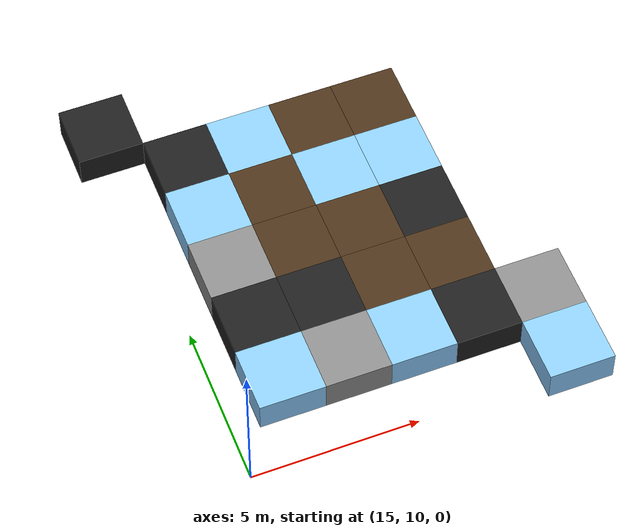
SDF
<sdf version="1.5">
 <world name="squares_example">
  <model name="tile_28_21">
   <static>true</static>
   <pose>25.000 11.000 -0.500 0 0 0</pose>
   <link name="link">
    <collision name="col">
     <geometry><box><size>2.0 2.0 1.0</size></box></geometry>
     <surface>
      <friction>
       <ode><mu>0.03</mu><mu2>0.02</mu2><fdir1>1 0 0</fdir1><slip1>0.03</slip1><slip2>0.03</slip2></ode>
       <torsional>
        <coefficient>0.005</coefficient>
        <use_patch_radius>false</use_patch_radius>
        <surface_radius>0.12</surface_radius>
        <ode><slip>0.01</slip></ode>
       </torsional>
      </friction>
      <bounce><restitution_coefficient>0.0</restitution_coefficient><threshold>0.1</threshold></bounce>
      <contact>
       <ode><kp>10000000.0</kp><kd>1000.0</kd><max_vel>0.01</max_vel><min_depth>0.0</min_depth></ode>
      </contact>
     </surface>
    </collision>
    <visual name="visual">
     <geometry><box><size>2.0 2.0 1.0</size></box></geometry>
     <material>
      <diffuse>0.55 0.80 1.00 1</diffuse>
      <ambient>0 0 0 0</ambient>
      <specular>0 0 0 1</specular>
      <emissive>0 0 0 1</emissive>
     </material>
    </visual>
   </link>
  </model>
  <model name="tile_24_22">
   <static>true</static>
   <pose>17.000 13.000 -0.500 0 0 0</pose>
   <link name="link">
    <collision name="col">
     <geometry><box><size>2.0 2.0 1.0</size></box></geometry>
     <surface>
      <friction>
       <ode><mu>0.03</mu><mu2>0.02</mu2><fdir1>1 0 0</fdir1><slip1>0.03</slip1><slip2>0.03</slip2></ode>
       <torsional>
        <coefficient>0.005</coefficient>
        <use_patch_radius>false</use_patch_radius>
        <surface_radius>0.12</surface_radius>
        <ode><slip>0.01</slip></ode>
       </torsional>
      </friction>
      <bounce><restitution_coefficient>0.0</restitution_coefficient><threshold>0.1</threshold></bounce>
      <contact>
       <ode><kp>10000000.0</kp><kd>1000.0</kd><max_vel>0.01</max_vel><min_depth>0.0</min_depth></ode>
      </contact>
     </surface>
    </collision>
    <visual name="visual">
     <geometry><box><size>2.0 2.0 1.0</size></box></geometry>
     <material>
      <diffuse>0.55 0.80 1.00 1</diffuse>
      <ambient>0 0 0 0</ambient>
      <specular>0 0 0 1</specular>
      <emissive>0 0 0 1</emissive>
     </material>
    </visual>
   </link>
  </model>
  <model name="tile_25_22">
   <static>true</static>
   <pose>19.000 13.000 -0.500 0 0 0</pose>
   <link name="link">
    <collision name="col">
     <geometry><box><size>2.0 2.0 1.0</size></box></geometry>
     <surface>
      <friction>
       <ode><mu>0.8</mu><mu2>0.3</mu2><fdir1>1 0 0</fdir1><slip1>0.0</slip1><slip2>0.0</slip2></ode>
       <torsional>
        <coefficient>0.03</coefficient>
        <use_patch_radius>false</use_patch_radius>
        <surface_radius>0.12</surface_radius>
        <ode><slip>0.0</slip></ode>
       </torsional>
      </friction>
      <bounce><restitution_coefficient>0.0</restitution_coefficient><threshold>0.1</threshold></bounce>
      <contact>
       <ode><kp>10000000000.0</kp><kd>10000000.0</kd><max_vel>0.01</max_vel><min_depth>0.0</min_depth></ode>
      </contact>
     </surface>
    </collision>
    <visual name="visual">
     <geometry><box><size>2.0 2.0 1.0</size></box></geometry>
     <material>
      <diffuse>0.55 0.55 0.55 1</diffuse>
      <ambient>0 0 0 0</ambient>
      <specular>0 0 0 1</specular>
      <emissive>0 0 0 1</emissive>
     </material>
    </visual>
   </link>
  </model>
  <model name="tile_26_22">
   <static>true</static>
   <pose>21.000 13.000 -0.500 0 0 0</pose>
   <link name="link">
    <collision name="col">
     <geometry><box><size>2.0 2.0 1.0</size></box></geometry>
     <surface>
      <friction>
       <ode><mu>0.03</mu><mu2>0.02</mu2><fdir1>1 0 0</fdir1><slip1>0.03</slip1><slip2>0.03</slip2></ode>
       <torsional>
        <coefficient>0.005</coefficient>
        <use_patch_radius>false</use_patch_radius>
        <surface_radius>0.12</surface_radius>
        <ode><slip>0.01</slip></ode>
       </torsional>
      </friction>
      <bounce><restitution_coefficient>0.0</restitution_coefficient><threshold>0.1</threshold></bounce>
      <contact>
       <ode><kp>10000000.0</kp><kd>1000.0</kd><max_vel>0.01</max_vel><min_depth>0.0</min_depth></ode>
      </contact>
     </surface>
    </collision>
    <visual name="visual">
     <geometry><box><size>2.0 2.0 1.0</size></box></geometry>
     <material>
      <diffuse>0.55 0.80 1.00 1</diffuse>
      <ambient>0 0 0 0</ambient>
      <specular>0 0 0 1</specular>
      <emissive>0 0 0 1</emissive>
     </material>
    </visual>
   </link>
  </model>
  <model name="tile_27_22">
   <static>true</static>
   <pose>23.000 13.000 -0.500 0 0 0</pose>
   <link name="link">
    <collision name="col">
     <geometry><box><size>2.0 2.0 1.0</size></box></geometry>
     <surface>
      <friction>
       <ode><mu>0.4</mu><mu2>0.15</mu2><fdir1>1 0 0</fdir1><slip1>0.0</slip1><slip2>0.0</slip2></ode>
       <torsional>
        <coefficient>0.03</coefficient>
        <use_patch_radius>false</use_patch_radius>
        <surface_radius>0.12</surface_radius>
        <ode><slip>0.0</slip></ode>
       </torsional>
      </friction>
      <bounce><restitution_coefficient>0.0</restitution_coefficient><threshold>0.1</threshold></bounce>
      <contact>
       <ode><kp>1000000000.0</kp><kd>1000000.0</kd><max_vel>0.01</max_vel><min_depth>0.0</min_depth></ode>
      </contact>
     </surface>
    </collision>
    <visual name="visual">
     <geometry><box><size>2.0 2.0 1.0</size></box></geometry>
     <material>
      <diffuse>0.12 0.12 0.12 1</diffuse>
      <ambient>0 0 0 0</ambient>
      <specular>0 0 0 1</specular>
      <emissive>0 0 0 1</emissive>
     </material>
    </visual>
   </link>
  </model>
  <model name="tile_28_22">
   <static>true</static>
   <pose>25.000 13.000 -0.500 0 0 0</pose>
   <link name="link">
    <collision name="col">
     <geometry><box><size>2.0 2.0 1.0</size></box></geometry>
     <surface>
      <friction>
       <ode><mu>0.8</mu><mu2>0.3</mu2><fdir1>1 0 0</fdir1><slip1>0.0</slip1><slip2>0.0</slip2></ode>
       <torsional>
        <coefficient>0.03</coefficient>
        <use_patch_radius>false</use_patch_radius>
        <surface_radius>0.12</surface_radius>
        <ode><slip>0.0</slip></ode>
       </torsional>
      </friction>
      <bounce><restitution_coefficient>0.0</restitution_coefficient><threshold>0.1</threshold></bounce>
      <contact>
       <ode><kp>10000000000.0</kp><kd>10000000.0</kd><max_vel>0.01</max_vel><min_depth>0.0</min_depth></ode>
      </contact>
     </surface>
    </collision>
    <visual name="visual">
     <geometry><box><size>2.0 2.0 1.0</size></box></geometry>
     <material>
      <diffuse>0.55 0.55 0.55 1</diffuse>
      <ambient>0 0 0 0</ambient>
      <specular>0 0 0 1</specular>
      <emissive>0 0 0 1</emissive>
     </material>
    </visual>
   </link>
  </model>
  <model name="tile_24_23">
   <static>true</static>
   <pose>17.000 15.000 -0.500 0 0 0</pose>
   <link name="link">
    <collision name="col">
     <geometry><box><size>2.0 2.0 1.0</size></box></geometry>
     <surface>
      <friction>
       <ode><mu>0.4</mu><mu2>0.15</mu2><fdir1>1 0 0</fdir1><slip1>0.0</slip1><slip2>0.0</slip2></ode>
       <torsional>
        <coefficient>0.03</coefficient>
        <use_patch_radius>false</use_patch_radius>
        <surface_radius>0.12</surface_radius>
        <ode><slip>0.0</slip></ode>
       </torsional>
      </friction>
      <bounce><restitution_coefficient>0.0</restitution_coefficient><threshold>0.1</threshold></bounce>
      <contact>
       <ode><kp>1000000000.0</kp><kd>1000000.0</kd><max_vel>0.01</max_vel><min_depth>0.0</min_depth></ode>
      </contact>
     </surface>
    </collision>
    <visual name="visual">
     <geometry><box><size>2.0 2.0 1.0</size></box></geometry>
     <material>
      <diffuse>0.12 0.12 0.12 1</diffuse>
      <ambient>0 0 0 0</ambient>
      <specular>0 0 0 1</specular>
      <emissive>0 0 0 1</emissive>
     </material>
    </visual>
   </link>
  </model>
  <model name="tile_25_23">
   <static>true</static>
   <pose>19.000 15.000 -0.500 0 0 0</pose>
   <link name="link">
    <collision name="col">
     <geometry><box><size>2.0 2.0 1.0</size></box></geometry>
     <surface>
      <friction>
       <ode><mu>0.4</mu><mu2>0.15</mu2><fdir1>1 0 0</fdir1><slip1>0.0</slip1><slip2>0.0</slip2></ode>
       <torsional>
        <coefficient>0.03</coefficient>
        <use_patch_radius>false</use_patch_radius>
        <surface_radius>0.12</surface_radius>
        <ode><slip>0.0</slip></ode>
       </torsional>
      </friction>
      <bounce><restitution_coefficient>0.0</restitution_coefficient><threshold>0.1</threshold></bounce>
      <contact>
       <ode><kp>1000000000.0</kp><kd>1000000.0</kd><max_vel>0.01</max_vel><min_depth>0.0</min_depth></ode>
      </contact>
     </surface>
    </collision>
    <visual name="visual">
     <geometry><box><size>2.0 2.0 1.0</size></box></geometry>
     <material>
      <diffuse>0.12 0.12 0.12 1</diffuse>
      <ambient>0 0 0 0</ambient>
      <specular>0 0 0 1</specular>
      <emissive>0 0 0 1</emissive>
     </material>
    </visual>
   </link>
  </model>
  <model name="tile_26_23">
   <static>true</static>
   <pose>21.000 15.000 -0.500 0 0 0</pose>
   <link name="link">
    <collision name="col">
     <geometry><box><size>2.0 2.0 1.0</size></box></geometry>
     <surface>
      <friction>
       <ode><mu>0.6</mu><mu2>0.4</mu2><fdir1>1 0 0</fdir1><slip1>0.08</slip1><slip2>0.08</slip2></ode>
       <torsional>
        <coefficient>0.03</coefficient>
        <use_patch_radius>false</use_patch_radius>
        <surface_radius>0.12</surface_radius>
        <ode><slip>0.0</slip></ode>
       </torsional>
      </friction>
      <bounce><restitution_coefficient>0.0</restitution_coefficient><threshold>0.1</threshold></bounce>
      <contact>
       <ode><kp>1000000.0</kp><kd>10000.0</kd><max_vel>0.01</max_vel><min_depth>0.0</min_depth></ode>
      </contact>
     </surface>
    </collision>
    <visual name="visual">
     <geometry><box><size>2.0 2.0 1.0</size></box></geometry>
     <material>
      <diffuse>0.30 0.20 0.10 1</diffuse>
      <ambient>0 0 0 0</ambient>
      <specular>0 0 0 1</specular>
      <emissive>0 0 0 1</emissive>
     </material>
    </visual>
   </link>
  </model>
  <model name="tile_27_23">
   <static>true</static>
   <pose>23.000 15.000 -0.500 0 0 0</pose>
   <link name="link">
    <collision name="col">
     <geometry><box><size>2.0 2.0 1.0</size></box></geometry>
     <surface>
      <friction>
       <ode><mu>0.6</mu><mu2>0.4</mu2><fdir1>1 0 0</fdir1><slip1>0.08</slip1><slip2>0.08</slip2></ode>
       <torsional>
        <coefficient>0.03</coefficient>
        <use_patch_radius>false</use_patch_radius>
        <surface_radius>0.12</surface_radius>
        <ode><slip>0.0</slip></ode>
       </torsional>
      </friction>
      <bounce><restitution_coefficient>0.0</restitution_coefficient><threshold>0.1</threshold></bounce>
      <contact>
       <ode><kp>1000000.0</kp><kd>10000.0</kd><max_vel>0.01</max_vel><min_depth>0.0</min_depth></ode>
      </contact>
     </surface>
    </collision>
    <visual name="visual">
     <geometry><box><size>2.0 2.0 1.0</size></box></geometry>
     <material>
      <diffuse>0.30 0.20 0.10 1</diffuse>
      <ambient>0 0 0 0</ambient>
      <specular>0 0 0 1</specular>
      <emissive>0 0 0 1</emissive>
     </material>
    </visual>
   </link>
  </model>
  <model name="tile_24_24">
   <static>true</static>
   <pose>17.000 17.000 -0.500 0 0 0</pose>
   <link name="link">
    <collision name="col">
     <geometry><box><size>2.0 2.0 1.0</size></box></geometry>
     <surface>
      <friction>
       <ode><mu>0.8</mu><mu2>0.3</mu2><fdir1>1 0 0</fdir1><slip1>0.0</slip1><slip2>0.0</slip2></ode>
       <torsional>
        <coefficient>0.03</coefficient>
        <use_patch_radius>false</use_patch_radius>
        <surface_radius>0.12</surface_radius>
        <ode><slip>0.0</slip></ode>
       </torsional>
      </friction>
      <bounce><restitution_coefficient>0.0</restitution_coefficient><threshold>0.1</threshold></bounce>
      <contact>
       <ode><kp>10000000000.0</kp><kd>10000000.0</kd><max_vel>0.01</max_vel><min_depth>0.0</min_depth></ode>
      </contact>
     </surface>
    </collision>
    <visual name="visual">
     <geometry><box><size>2.0 2.0 1.0</size></box></geometry>
     <material>
      <diffuse>0.55 0.55 0.55 1</diffuse>
      <ambient>0 0 0 0</ambient>
      <specular>0 0 0 1</specular>
      <emissive>0 0 0 1</emissive>
     </material>
    </visual>
   </link>
  </model>
  <model name="tile_25_24">
   <static>true</static>
   <pose>19.000 17.000 -0.500 0 0 0</pose>
   <link name="link">
    <collision name="col">
     <geometry><box><size>2.0 2.0 1.0</size></box></geometry>
     <surface>
      <friction>
       <ode><mu>0.6</mu><mu2>0.4</mu2><fdir1>1 0 0</fdir1><slip1>0.08</slip1><slip2>0.08</slip2></ode>
       <torsional>
        <coefficient>0.03</coefficient>
        <use_patch_radius>false</use_patch_radius>
        <surface_radius>0.12</surface_radius>
        <ode><slip>0.0</slip></ode>
       </torsional>
      </friction>
      <bounce><restitution_coefficient>0.0</restitution_coefficient><threshold>0.1</threshold></bounce>
      <contact>
       <ode><kp>1000000.0</kp><kd>10000.0</kd><max_vel>0.01</max_vel><min_depth>0.0</min_depth></ode>
      </contact>
     </surface>
    </collision>
    <visual name="visual">
     <geometry><box><size>2.0 2.0 1.0</size></box></geometry>
     <material>
      <diffuse>0.30 0.20 0.10 1</diffuse>
      <ambient>0 0 0 0</ambient>
      <specular>0 0 0 1</specular>
      <emissive>0 0 0 1</emissive>
     </material>
    </visual>
   </link>
  </model>
  <model name="tile_26_24">
   <static>true</static>
   <pose>21.000 17.000 -0.500 0 0 0</pose>
   <link name="link">
    <collision name="col">
     <geometry><box><size>2.0 2.0 1.0</size></box></geometry>
     <surface>
      <friction>
       <ode><mu>0.6</mu><mu2>0.4</mu2><fdir1>1 0 0</fdir1><slip1>0.08</slip1><slip2>0.08</slip2></ode>
       <torsional>
        <coefficient>0.03</coefficient>
        <use_patch_radius>false</use_patch_radius>
        <surface_radius>0.12</surface_radius>
        <ode><slip>0.0</slip></ode>
       </torsional>
      </friction>
      <bounce><restitution_coefficient>0.0</restitution_coefficient><threshold>0.1</threshold></bounce>
      <contact>
       <ode><kp>1000000.0</kp><kd>10000.0</kd><max_vel>0.01</max_vel><min_depth>0.0</min_depth></ode>
      </contact>
     </surface>
    </collision>
    <visual name="visual">
     <geometry><box><size>2.0 2.0 1.0</size></box></geometry>
     <material>
      <diffuse>0.30 0.20 0.10 1</diffuse>
      <ambient>0 0 0 0</ambient>
      <specular>0 0 0 1</specular>
      <emissive>0 0 0 1</emissive>
     </material>
    </visual>
   </link>
  </model>
  <model name="tile_27_24">
   <static>true</static>
   <pose>23.000 17.000 -0.500 0 0 0</pose>
   <link name="link">
    <collision name="col">
     <geometry><box><size>2.0 2.0 1.0</size></box></geometry>
     <surface>
      <friction>
       <ode><mu>0.4</mu><mu2>0.15</mu2><fdir1>1 0 0</fdir1><slip1>0.0</slip1><slip2>0.0</slip2></ode>
       <torsional>
        <coefficient>0.03</coefficient>
        <use_patch_radius>false</use_patch_radius>
        <surface_radius>0.12</surface_radius>
        <ode><slip>0.0</slip></ode>
       </torsional>
      </friction>
      <bounce><restitution_coefficient>0.0</restitution_coefficient><threshold>0.1</threshold></bounce>
      <contact>
       <ode><kp>1000000000.0</kp><kd>1000000.0</kd><max_vel>0.01</max_vel><min_depth>0.0</min_depth></ode>
      </contact>
     </surface>
    </collision>
    <visual name="visual">
     <geometry><box><size>2.0 2.0 1.0</size></box></geometry>
     <material>
      <diffuse>0.12 0.12 0.12 1</diffuse>
      <ambient>0 0 0 0</ambient>
      <specular>0 0 0 1</specular>
      <emissive>0 0 0 1</emissive>
     </material>
    </visual>
   </link>
  </model>
  <model name="tile_24_25">
   <static>true</static>
   <pose>17.000 19.000 -0.500 0 0 0</pose>
   <link name="link">
    <collision name="col">
     <geometry><box><size>2.0 2.0 1.0</size></box></geometry>
     <surface>
      <friction>
       <ode><mu>0.03</mu><mu2>0.02</mu2><fdir1>1 0 0</fdir1><slip1>0.03</slip1><slip2>0.03</slip2></ode>
       <torsional>
        <coefficient>0.005</coefficient>
        <use_patch_radius>false</use_patch_radius>
        <surface_radius>0.12</surface_radius>
        <ode><slip>0.01</slip></ode>
       </torsional>
      </friction>
      <bounce><restitution_coefficient>0.0</restitution_coefficient><threshold>0.1</threshold></bounce>
      <contact>
       <ode><kp>10000000.0</kp><kd>1000.0</kd><max_vel>0.01</max_vel><min_depth>0.0</min_depth></ode>
      </contact>
     </surface>
    </collision>
    <visual name="visual">
     <geometry><box><size>2.0 2.0 1.0</size></box></geometry>
     <material>
      <diffuse>0.55 0.80 1.00 1</diffuse>
      <ambient>0 0 0 0</ambient>
      <specular>0 0 0 1</specular>
      <emissive>0 0 0 1</emissive>
     </material>
    </visual>
   </link>
  </model>
  <model name="tile_25_25">
   <static>true</static>
   <pose>19.000 19.000 -0.500 0 0 0</pose>
   <link name="link">
    <collision name="col">
     <geometry><box><size>2.0 2.0 1.0</size></box></geometry>
     <surface>
      <friction>
       <ode><mu>0.6</mu><mu2>0.4</mu2><fdir1>1 0 0</fdir1><slip1>0.08</slip1><slip2>0.08</slip2></ode>
       <torsional>
        <coefficient>0.03</coefficient>
        <use_patch_radius>false</use_patch_radius>
        <surface_radius>0.12</surface_radius>
        <ode><slip>0.0</slip></ode>
       </torsional>
      </friction>
      <bounce><restitution_coefficient>0.0</restitution_coefficient><threshold>0.1</threshold></bounce>
      <contact>
       <ode><kp>1000000.0</kp><kd>10000.0</kd><max_vel>0.01</max_vel><min_depth>0.0</min_depth></ode>
      </contact>
     </surface>
    </collision>
    <visual name="visual">
     <geometry><box><size>2.0 2.0 1.0</size></box></geometry>
     <material>
      <diffuse>0.30 0.20 0.10 1</diffuse>
      <ambient>0 0 0 0</ambient>
      <specular>0 0 0 1</specular>
      <emissive>0 0 0 1</emissive>
     </material>
    </visual>
   </link>
  </model>
  <model name="tile_26_25">
   <static>true</static>
   <pose>21.000 19.000 -0.500 0 0 0</pose>
   <link name="link">
    <collision name="col">
     <geometry><box><size>2.0 2.0 1.0</size></box></geometry>
     <surface>
      <friction>
       <ode><mu>0.03</mu><mu2>0.02</mu2><fdir1>1 0 0</fdir1><slip1>0.03</slip1><slip2>0.03</slip2></ode>
       <torsional>
        <coefficient>0.005</coefficient>
        <use_patch_radius>false</use_patch_radius>
        <surface_radius>0.12</surface_radius>
        <ode><slip>0.01</slip></ode>
       </torsional>
      </friction>
      <bounce><restitution_coefficient>0.0</restitution_coefficient><threshold>0.1</threshold></bounce>
      <contact>
       <ode><kp>10000000.0</kp><kd>1000.0</kd><max_vel>0.01</max_vel><min_depth>0.0</min_depth></ode>
      </contact>
     </surface>
    </collision>
    <visual name="visual">
     <geometry><box><size>2.0 2.0 1.0</size></box></geometry>
     <material>
      <diffuse>0.55 0.80 1.00 1</diffuse>
      <ambient>0 0 0 0</ambient>
      <specular>0 0 0 1</specular>
      <emissive>0 0 0 1</emissive>
     </material>
    </visual>
   </link>
  </model>
  <model name="tile_27_25">
   <static>true</static>
   <pose>23.000 19.000 -0.500 0 0 0</pose>
   <link name="link">
    <collision name="col">
     <geometry><box><size>2.0 2.0 1.0</size></box></geometry>
     <surface>
      <friction>
       <ode><mu>0.03</mu><mu2>0.02</mu2><fdir1>1 0 0</fdir1><slip1>0.03</slip1><slip2>0.03</slip2></ode>
       <torsional>
        <coefficient>0.005</coefficient>
        <use_patch_radius>false</use_patch_radius>
        <surface_radius>0.12</surface_radius>
        <ode><slip>0.01</slip></ode>
       </torsional>
      </friction>
      <bounce><restitution_coefficient>0.0</restitution_coefficient><threshold>0.1</threshold></bounce>
      <contact>
       <ode><kp>10000000.0</kp><kd>1000.0</kd><max_vel>0.01</max_vel><min_depth>0.0</min_depth></ode>
      </contact>
     </surface>
    </collision>
    <visual name="visual">
     <geometry><box><size>2.0 2.0 1.0</size></box></geometry>
     <material>
      <diffuse>0.55 0.80 1.00 1</diffuse>
      <ambient>0 0 0 0</ambient>
      <specular>0 0 0 1</specular>
      <emissive>0 0 0 1</emissive>
     </material>
    </visual>
   </link>
  </model>
  <model name="tile_24_26">
   <static>true</static>
   <pose>17.000 21.000 -0.500 0 0 0</pose>
   <link name="link">
    <collision name="col">
     <geometry><box><size>2.0 2.0 1.0</size></box></geometry>
     <surface>
      <friction>
       <ode><mu>0.4</mu><mu2>0.15</mu2><fdir1>1 0 0</fdir1><slip1>0.0</slip1><slip2>0.0</slip2></ode>
       <torsional>
        <coefficient>0.03</coefficient>
        <use_patch_radius>false</use_patch_radius>
        <surface_radius>0.12</surface_radius>
        <ode><slip>0.0</slip></ode>
       </torsional>
      </friction>
      <bounce><restitution_coefficient>0.0</restitution_coefficient><threshold>0.1</threshold></bounce>
      <contact>
       <ode><kp>1000000000.0</kp><kd>1000000.0</kd><max_vel>0.01</max_vel><min_depth>0.0</min_depth></ode>
      </contact>
     </surface>
    </collision>
    <visual name="visual">
     <geometry><box><size>2.0 2.0 1.0</size></box></geometry>
     <material>
      <diffuse>0.12 0.12 0.12 1</diffuse>
      <ambient>0 0 0 0</ambient>
      <specular>0 0 0 1</specular>
      <emissive>0 0 0 1</emissive>
     </material>
    </visual>
   </link>
  </model>
  <model name="tile_25_26">
   <static>true</static>
   <pose>19.000 21.000 -0.500 0 0 0</pose>
   <link name="link">
    <collision name="col">
     <geometry><box><size>2.0 2.0 1.0</size></box></geometry>
     <surface>
      <friction>
       <ode><mu>0.03</mu><mu2>0.02</mu2><fdir1>1 0 0</fdir1><slip1>0.03</slip1><slip2>0.03</slip2></ode>
       <torsional>
        <coefficient>0.005</coefficient>
        <use_patch_radius>false</use_patch_radius>
        <surface_radius>0.12</surface_radius>
        <ode><slip>0.01</slip></ode>
       </torsional>
      </friction>
      <bounce><restitution_coefficient>0.0</restitution_coefficient><threshold>0.1</threshold></bounce>
      <contact>
       <ode><kp>10000000.0</kp><kd>1000.0</kd><max_vel>0.01</max_vel><min_depth>0.0</min_depth></ode>
      </contact>
     </surface>
    </collision>
    <visual name="visual">
     <geometry><box><size>2.0 2.0 1.0</size></box></geometry>
     <material>
      <diffuse>0.55 0.80 1.00 1</diffuse>
      <ambient>0 0 0 0</ambient>
      <specular>0 0 0 1</specular>
      <emissive>0 0 0 1</emissive>
     </material>
    </visual>
   </link>
  </model>
  <model name="tile_26_26">
   <static>true</static>
   <pose>21.000 21.000 -0.500 0 0 0</pose>
   <link name="link">
    <collision name="col">
     <geometry><box><size>2.0 2.0 1.0</size></box></geometry>
     <surface>
      <friction>
       <ode><mu>0.6</mu><mu2>0.4</mu2><fdir1>1 0 0</fdir1><slip1>0.08</slip1><slip2>0.08</slip2></ode>
       <torsional>
        <coefficient>0.03</coefficient>
        <use_patch_radius>false</use_patch_radius>
        <surface_radius>0.12</surface_radius>
        <ode><slip>0.0</slip></ode>
       </torsional>
      </friction>
      <bounce><restitution_coefficient>0.0</restitution_coefficient><threshold>0.1</threshold></bounce>
      <contact>
       <ode><kp>1000000.0</kp><kd>10000.0</kd><max_vel>0.01</max_vel><min_depth>0.0</min_depth></ode>
      </contact>
     </surface>
    </collision>
    <visual name="visual">
     <geometry><box><size>2.0 2.0 1.0</size></box></geometry>
     <material>
      <diffuse>0.30 0.20 0.10 1</diffuse>
      <ambient>0 0 0 0</ambient>
      <specular>0 0 0 1</specular>
      <emissive>0 0 0 1</emissive>
     </material>
    </visual>
   </link>
  </model>
  <model name="tile_27_26">
   <static>true</static>
   <pose>23.000 21.000 -0.500 0 0 0</pose>
   <link name="link">
    <collision name="col">
     <geometry><box><size>2.0 2.0 1.0</size></box></geometry>
     <surface>
      <friction>
       <ode><mu>0.6</mu><mu2>0.4</mu2><fdir1>1 0 0</fdir1><slip1>0.08</slip1><slip2>0.08</slip2></ode>
       <torsional>
        <coefficient>0.03</coefficient>
        <use_patch_radius>false</use_patch_radius>
        <surface_radius>0.12</surface_radius>
        <ode><slip>0.0</slip></ode>
       </torsional>
      </friction>
      <bounce><restitution_coefficient>0.0</restitution_coefficient><threshold>0.1</threshold></bounce>
      <contact>
       <ode><kp>1000000.0</kp><kd>10000.0</kd><max_vel>0.01</max_vel><min_depth>0.0</min_depth></ode>
      </contact>
     </surface>
    </collision>
    <visual name="visual">
     <geometry><box><size>2.0 2.0 1.0</size></box></geometry>
     <material>
      <diffuse>0.30 0.20 0.10 1</diffuse>
      <ambient>0 0 0 0</ambient>
      <specular>0 0 0 1</specular>
      <emissive>0 0 0 1</emissive>
     </material>
    </visual>
   </link>
  </model>
  <model name="tile_23_27">
   <static>true</static>
   <pose>15.000 23.000 -0.500 0 0 0</pose>
   <link name="link">
    <collision name="col">
     <geometry><box><size>2.0 2.0 1.0</size></box></geometry>
     <surface>
      <friction>
       <ode><mu>0.4</mu><mu2>0.15</mu2><fdir1>1 0 0</fdir1><slip1>0.0</slip1><slip2>0.0</slip2></ode>
       <torsional>
        <coefficient>0.03</coefficient>
        <use_patch_radius>false</use_patch_radius>
        <surface_radius>0.12</surface_radius>
        <ode><slip>0.0</slip></ode>
       </torsional>
      </friction>
      <bounce><restitution_coefficient>0.0</restitution_coefficient><threshold>0.1</threshold></bounce>
      <contact>
       <ode><kp>1000000000.0</kp><kd>1000000.0</kd><max_vel>0.01</max_vel><min_depth>0.0</min_depth></ode>
      </contact>
     </surface>
    </collision>
    <visual name="visual">
     <geometry><box><size>2.0 2.0 1.0</size></box></geometry>
     <material>
      <diffuse>0.12 0.12 0.12 1</diffuse>
      <ambient>0 0 0 0</ambient>
      <specular>0 0 0 1</specular>
      <emissive>0 0 0 1</emissive>
     </material>
    </visual>
   </link>
  </model>
 </world>
</sdf>
